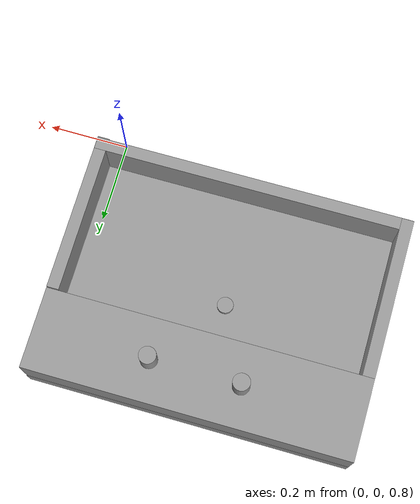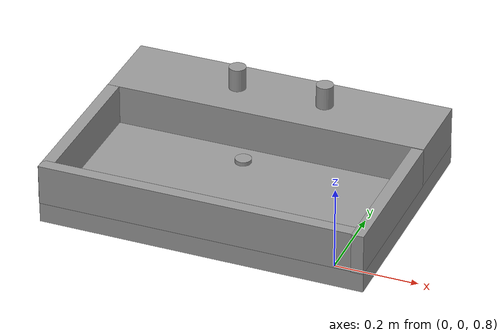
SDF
<?xml version='1.0'?>
<sdf version='1.7'>
  <model name='my_sink'>
    <link name='link_1'>
      <inertial>
        <mass>1</mass>
        <inertia>
          <ixx>0.166667</ixx>
          <ixy>0</ixy>
          <ixz>0</ixz>
          <iyy>0.166667</iyy>
          <iyz>0</iyz>
          <izz>0.166667</izz>
        </inertia>
        <pose>0 0 0 0 -0 0</pose>
      </inertial>
      <pose>-0.339251 0.324347 0.253041 -3e-06 -4e-06 -0</pose>
      <gravity>1</gravity>
      <self_collide>0</self_collide>
      <kinematic>0</kinematic>
      <enable_wind>0</enable_wind>
      <visual name='visual'>
        <pose>0 0 0.5 0 -0 0</pose>
        <geometry>
          <box>
            <size>0.8 0.6 0.05</size>
          </box>
        </geometry>
        <material>
          <lighting>1</lighting>
          <script>
            <uri>file://media/materials/scripts/gazebo.material</uri>
            <name>Gazebo/Grey</name>
          </script>
          <shader type='pixel'>
            <normal_map>__default__</normal_map>
          </shader>
          <ambient>0.9 0.9 0.9 1</ambient>
          <diffuse>0.9 0.9 0.9 1</diffuse>
          <specular>0.01 0.01 0.01 1</specular>
          <emissive>0 0 0 1</emissive>
        </material>
        <transparency>0</transparency>
        <cast_shadows>1</cast_shadows>
      </visual>
      <collision name='collision'>
        <laser_retro>0</laser_retro>
        <max_contacts>10</max_contacts>
        <pose>0 0 0.5 0 -0 0</pose>
        <geometry>
          <box>
            <size>0.8 0.6 0.05</size>
          </box>
        </geometry>
        <surface>
          <friction>
            <ode>
              <mu>1</mu>
              <mu2>1</mu2>
              <fdir1>0 0 0</fdir1>
              <slip1>0</slip1>
              <slip2>0</slip2>
            </ode>
            <torsional>
              <coefficient>1</coefficient>
              <patch_radius>0</patch_radius>
              <surface_radius>0</surface_radius>
              <use_patch_radius>1</use_patch_radius>
              <ode>
                <slip>0</slip>
              </ode>
            </torsional>
          </friction>
          <bounce>
            <restitution_coefficient>0</restitution_coefficient>
            <threshold>1e+06</threshold>
          </bounce>
          <contact>
            <collide_without_contact>0</collide_without_contact>
            <collide_without_contact_bitmask>1</collide_without_contact_bitmask>
            <collide_bitmask>1</collide_bitmask>
            <ode>
              <soft_cfm>0</soft_cfm>
              <soft_erp>0.2</soft_erp>
              <kp>1e+13</kp>
              <kd>1</kd>
              <max_vel>0.01</max_vel>
              <min_depth>0</min_depth>
            </ode>
            <bullet>
              <split_impulse>1</split_impulse>
              <split_impulse_penetration_threshold>-0.01</split_impulse_penetration_threshold>
              <soft_cfm>0</soft_cfm>
              <soft_erp>0.2</soft_erp>
              <kp>1e+13</kp>
              <kd>1</kd>
            </bullet>
          </contact>
        </surface>
      </collision>
    </link>
    <link name='link_1_0'>
      <inertial>
        <mass>1</mass>
        <inertia>
          <ixx>0.145833</ixx>
          <ixy>0</ixy>
          <ixz>0</ixz>
          <iyy>0.145833</iyy>
          <iyz>0</iyz>
          <izz>0.125</izz>
        </inertia>
        <pose>0 0 0 0 -0 0</pose>
      </inertial>
      <pose>-0.354606 0.332912 0.806035 0 -0 0</pose>
      <gravity>0</gravity>
      <self_collide>0</self_collide>
      <kinematic>0</kinematic>
      <enable_wind>0</enable_wind>
      <visual name='visual'>
        <pose>0 0 0 0 -0 0</pose>
        <geometry>
          <cylinder>
            <radius>0.02</radius>
            <length>0.01</length>
          </cylinder>
        </geometry>
        <material>
          <lighting>1</lighting>
          <script>
            <uri>file://media/materials/scripts/gazebo.material</uri>
            <name>Gazebo/Grey</name>
          </script>
          <shader type='pixel'>
            <normal_map>__default__</normal_map>
          </shader>
          <ambient>0.3 0.3 0.3 0</ambient>
          <diffuse>0.3 0.3 0.3 1</diffuse>
          <specular>0.01 0.01 0.01 1</specular>
          <emissive>0 0 0 1</emissive>
        </material>
        <transparency>0</transparency>
        <cast_shadows>1</cast_shadows>
      </visual>
      <collision name='collision'>
        <laser_retro>0</laser_retro>
        <max_contacts>10</max_contacts>
        <pose>0 0 0 0 -0 0</pose>
        <geometry>
          <cylinder>
            <radius>0.02</radius>
            <length>0.01</length>
          </cylinder>
        </geometry>
        <surface>
          <friction>
            <ode>
              <mu>1</mu>
              <mu2>1</mu2>
              <fdir1>0 0 0</fdir1>
              <slip1>0</slip1>
              <slip2>0</slip2>
            </ode>
            <torsional>
              <coefficient>1</coefficient>
              <patch_radius>0</patch_radius>
              <surface_radius>0</surface_radius>
              <use_patch_radius>1</use_patch_radius>
              <ode>
                <slip>0</slip>
              </ode>
            </torsional>
          </friction>
          <bounce>
            <restitution_coefficient>0</restitution_coefficient>
            <threshold>1e+06</threshold>
          </bounce>
          <contact>
            <collide_without_contact>0</collide_without_contact>
            <collide_without_contact_bitmask>1</collide_without_contact_bitmask>
            <collide_bitmask>1</collide_bitmask>
            <ode>
              <soft_cfm>0</soft_cfm>
              <soft_erp>0.2</soft_erp>
              <kp>1e+13</kp>
              <kd>1</kd>
              <max_vel>0.01</max_vel>
              <min_depth>0</min_depth>
            </ode>
            <bullet>
              <split_impulse>1</split_impulse>
              <split_impulse_penetration_threshold>-0.01</split_impulse_penetration_threshold>
              <soft_cfm>0</soft_cfm>
              <soft_erp>0.2</soft_erp>
              <kp>1e+13</kp>
              <kd>1</kd>
            </bullet>
          </contact>
        </surface>
      </collision>
    </link>
    <link name='link_1_0_clone'>
      <inertial>
        <mass>1</mass>
        <inertia>
          <ixx>0.145833</ixx>
          <ixy>0</ixy>
          <ixz>0</ixz>
          <iyy>0.145833</iyy>
          <iyz>0</iyz>
          <izz>0.125</izz>
        </inertia>
        <pose>0 0 0 0 -0 0</pose>
      </inertial>
      <pose>-0.447025 0.525674 0.904806 0 -0 0</pose>
      <gravity>1</gravity>
      <self_collide>0</self_collide>
      <kinematic>0</kinematic>
      <enable_wind>0</enable_wind>
      <visual name='visual'>
        <pose>0 0 0 0 -0 0</pose>
        <geometry>
          <cylinder>
            <radius>0.021</radius>
            <length>0.06</length>
          </cylinder>
        </geometry>
        <material>
          <lighting>1</lighting>
          <script>
            <uri>file://media/materials/scripts/gazebo.material</uri>
            <name>Gazebo/Grey</name>
          </script>
          <shader type='pixel'>
            <normal_map>__default__</normal_map>
          </shader>
          <ambient>0.3 0.3 0.3 0</ambient>
          <diffuse>0.3 0.3 0.3 1</diffuse>
          <specular>0.01 0.01 0.01 1</specular>
          <emissive>0 0 0 1</emissive>
        </material>
        <transparency>0</transparency>
        <cast_shadows>1</cast_shadows>
      </visual>
      <collision name='collision'>
        <laser_retro>0</laser_retro>
        <max_contacts>10</max_contacts>
        <pose>0 0 0 0 -0 0</pose>
        <geometry>
          <cylinder>
            <radius>0.021</radius>
            <length>0.06</length>
          </cylinder>
        </geometry>
        <surface>
          <friction>
            <ode>
              <mu>1</mu>
              <mu2>1</mu2>
              <fdir1>0 0 0</fdir1>
              <slip1>0</slip1>
              <slip2>0</slip2>
            </ode>
            <torsional>
              <coefficient>1</coefficient>
              <patch_radius>0</patch_radius>
              <surface_radius>0</surface_radius>
              <use_patch_radius>1</use_patch_radius>
              <ode>
                <slip>0</slip>
              </ode>
            </torsional>
          </friction>
          <bounce>
            <restitution_coefficient>0</restitution_coefficient>
            <threshold>1e+06</threshold>
          </bounce>
          <contact>
            <collide_without_contact>0</collide_without_contact>
            <collide_without_contact_bitmask>1</collide_without_contact_bitmask>
            <collide_bitmask>1</collide_bitmask>
            <ode>
              <soft_cfm>0</soft_cfm>
              <soft_erp>0.2</soft_erp>
              <kp>1e+13</kp>
              <kd>1</kd>
              <max_vel>0.01</max_vel>
              <min_depth>0</min_depth>
            </ode>
            <bullet>
              <split_impulse>1</split_impulse>
              <split_impulse_penetration_threshold>-0.01</split_impulse_penetration_threshold>
              <soft_cfm>0</soft_cfm>
              <soft_erp>0.2</soft_erp>
              <kp>1e+13</kp>
              <kd>1</kd>
            </bullet>
          </contact>
        </surface>
      </collision>
    </link>
    <link name='link_1_0_clone_clone'>
      <inertial>
        <mass>1</mass>
        <inertia>
          <ixx>0.145833</ixx>
          <ixy>0</ixy>
          <ixz>0</ixz>
          <iyy>0.145833</iyy>
          <iyz>0</iyz>
          <izz>0.125</izz>
        </inertia>
        <pose>0 0 0 0 -0 0</pose>
      </inertial>
      <pose>-0.224674 0.524945 0.904806 0 -0 0</pose>
      <gravity>1</gravity>
      <self_collide>0</self_collide>
      <kinematic>0</kinematic>
      <enable_wind>0</enable_wind>
      <visual name='visual'>
        <pose>0 0 0 0 -0 0</pose>
        <geometry>
          <cylinder>
            <radius>0.021</radius>
            <length>0.06</length>
          </cylinder>
        </geometry>
        <material>
          <lighting>1</lighting>
          <script>
            <uri>file://media/materials/scripts/gazebo.material</uri>
            <name>Gazebo/Grey</name>
          </script>
          <shader type='pixel'>
            <normal_map>__default__</normal_map>
          </shader>
          <ambient>0.3 0.3 0.3 0</ambient>
          <diffuse>0.3 0.3 0.3 1</diffuse>
          <specular>0.01 0.01 0.01 1</specular>
          <emissive>0 0 0 1</emissive>
        </material>
        <transparency>0</transparency>
        <cast_shadows>1</cast_shadows>
      </visual>
      <collision name='collision'>
        <laser_retro>0</laser_retro>
        <max_contacts>10</max_contacts>
        <pose>0 0 0 0 -0 0</pose>
        <geometry>
          <cylinder>
            <radius>0.021</radius>
            <length>0.06</length>
          </cylinder>
        </geometry>
        <surface>
          <friction>
            <ode>
              <mu>1</mu>
              <mu2>1</mu2>
              <fdir1>0 0 0</fdir1>
              <slip1>0</slip1>
              <slip2>0</slip2>
            </ode>
            <torsional>
              <coefficient>1</coefficient>
              <patch_radius>0</patch_radius>
              <surface_radius>0</surface_radius>
              <use_patch_radius>1</use_patch_radius>
              <ode>
                <slip>0</slip>
              </ode>
            </torsional>
          </friction>
          <bounce>
            <restitution_coefficient>0</restitution_coefficient>
            <threshold>1e+06</threshold>
          </bounce>
          <contact>
            <collide_without_contact>0</collide_without_contact>
            <collide_without_contact_bitmask>1</collide_without_contact_bitmask>
            <collide_bitmask>1</collide_bitmask>
            <ode>
              <soft_cfm>0</soft_cfm>
              <soft_erp>0.2</soft_erp>
              <kp>1e+13</kp>
              <kd>1</kd>
              <max_vel>0.01</max_vel>
              <min_depth>0</min_depth>
            </ode>
            <bullet>
              <split_impulse>1</split_impulse>
              <split_impulse_penetration_threshold>-0.01</split_impulse_penetration_threshold>
              <soft_cfm>0</soft_cfm>
              <soft_erp>0.2</soft_erp>
              <kp>1e+13</kp>
              <kd>1</kd>
            </bullet>
          </contact>
        </surface>
      </collision>
    </link>
    <link name='link_1_clone'>
      <inertial>
        <mass>1</mass>
        <inertia>
          <ixx>0.166667</ixx>
          <ixy>0</ixy>
          <ixz>0</ixz>
          <iyy>0.166667</iyy>
          <iyz>0</iyz>
          <izz>0.166667</izz>
        </inertia>
        <pose>0 0 0 0 -0 0</pose>
      </inertial>
      <pose>-0.339505 0.038648 0.327445 -6e-06 -8e-06 0</pose>
      <gravity>1</gravity>
      <self_collide>0</self_collide>
      <kinematic>0</kinematic>
      <enable_wind>0</enable_wind>
      <visual name='visual'>
        <pose>0 0 0.5 0 -0 0</pose>
        <geometry>
          <box>
            <size>0.8 0.03 0.1</size>
          </box>
        </geometry>
        <material>
          <lighting>1</lighting>
          <script>
            <uri>file://media/materials/scripts/gazebo.material</uri>
            <name>Gazebo/Grey</name>
          </script>
          <shader type='pixel'>
            <normal_map>__default__</normal_map>
          </shader>
          <ambient>0.9 0.9 0.9 1</ambient>
          <diffuse>0.9 0.9 0.9 1</diffuse>
          <specular>0.01 0.01 0.01 1</specular>
          <emissive>0 0 0 1</emissive>
        </material>
        <transparency>0</transparency>
        <cast_shadows>1</cast_shadows>
      </visual>
      <collision name='collision'>
        <laser_retro>0</laser_retro>
        <max_contacts>10</max_contacts>
        <pose>0 0 0.5 0 -0 0</pose>
        <geometry>
          <box>
            <size>0.8 0.03 0.1</size>
          </box>
        </geometry>
        <surface>
          <friction>
            <ode>
              <mu>1</mu>
              <mu2>1</mu2>
              <fdir1>0 0 0</fdir1>
              <slip1>0</slip1>
              <slip2>0</slip2>
            </ode>
            <torsional>
              <coefficient>1</coefficient>
              <patch_radius>0</patch_radius>
              <surface_radius>0</surface_radius>
              <use_patch_radius>1</use_patch_radius>
              <ode>
                <slip>0</slip>
              </ode>
            </torsional>
          </friction>
          <bounce>
            <restitution_coefficient>0</restitution_coefficient>
            <threshold>1e+06</threshold>
          </bounce>
          <contact>
            <collide_without_contact>0</collide_without_contact>
            <collide_without_contact_bitmask>1</collide_without_contact_bitmask>
            <collide_bitmask>1</collide_bitmask>
            <ode>
              <soft_cfm>0</soft_cfm>
              <soft_erp>0.2</soft_erp>
              <kp>1e+13</kp>
              <kd>1</kd>
              <max_vel>0.01</max_vel>
              <min_depth>0</min_depth>
            </ode>
            <bullet>
              <split_impulse>1</split_impulse>
              <split_impulse_penetration_threshold>-0.01</split_impulse_penetration_threshold>
              <soft_cfm>0</soft_cfm>
              <soft_erp>0.2</soft_erp>
              <kp>1e+13</kp>
              <kd>1</kd>
            </bullet>
          </contact>
        </surface>
      </collision>
    </link>
    <link name='link_1_clone_clone'>
      <inertial>
        <mass>1</mass>
        <inertia>
          <ixx>0.166667</ixx>
          <ixy>0</ixy>
          <ixz>0</ixz>
          <iyy>0.166667</iyy>
          <iyz>0</iyz>
          <izz>0.166667</izz>
        </inertia>
        <pose>0 0 0 0 -0 0</pose>
      </inertial>
      <pose>-0.3399 0.523683 0.327445 -6e-06 -8e-06 0</pose>
      <gravity>1</gravity>
      <self_collide>0</self_collide>
      <kinematic>0</kinematic>
      <enable_wind>0</enable_wind>
      <visual name='visual'>
        <pose>0 0 0.5 0 -0 0</pose>
        <geometry>
          <box>
            <size>0.8 0.2 0.1</size>
          </box>
        </geometry>
        <material>
          <lighting>1</lighting>
          <script>
            <uri>file://media/materials/scripts/gazebo.material</uri>
            <name>Gazebo/Grey</name>
          </script>
          <shader type='pixel'>
            <normal_map>__default__</normal_map>
          </shader>
          <ambient>0.9 0.9 0.9 1</ambient>
          <diffuse>0.9 0.9 0.9 1</diffuse>
          <specular>0.01 0.01 0.01 1</specular>
          <emissive>0 0 0 1</emissive>
        </material>
        <transparency>0</transparency>
        <cast_shadows>1</cast_shadows>
      </visual>
      <collision name='collision'>
        <laser_retro>0</laser_retro>
        <max_contacts>10</max_contacts>
        <pose>0 0 0.5 0 -0 0</pose>
        <geometry>
          <box>
            <size>0.8 0.03 0.1</size>
          </box>
        </geometry>
        <surface>
          <friction>
            <ode>
              <mu>1</mu>
              <mu2>1</mu2>
              <fdir1>0 0 0</fdir1>
              <slip1>0</slip1>
              <slip2>0</slip2>
            </ode>
            <torsional>
              <coefficient>1</coefficient>
              <patch_radius>0</patch_radius>
              <surface_radius>0</surface_radius>
              <use_patch_radius>1</use_patch_radius>
              <ode>
                <slip>0</slip>
              </ode>
            </torsional>
          </friction>
          <bounce>
            <restitution_coefficient>0</restitution_coefficient>
            <threshold>1e+06</threshold>
          </bounce>
          <contact>
            <collide_without_contact>0</collide_without_contact>
            <collide_without_contact_bitmask>1</collide_without_contact_bitmask>
            <collide_bitmask>1</collide_bitmask>
            <ode>
              <soft_cfm>0</soft_cfm>
              <soft_erp>0.2</soft_erp>
              <kp>1e+13</kp>
              <kd>1</kd>
              <max_vel>0.01</max_vel>
              <min_depth>0</min_depth>
            </ode>
            <bullet>
              <split_impulse>1</split_impulse>
              <split_impulse_penetration_threshold>-0.01</split_impulse_penetration_threshold>
              <soft_cfm>0</soft_cfm>
              <soft_erp>0.2</soft_erp>
              <kp>1e+13</kp>
              <kd>1</kd>
            </bullet>
          </contact>
        </surface>
      </collision>
    </link>
    <link name='link_1_clone_clone_0'>
      <inertial>
        <mass>1</mass>
        <inertia>
          <ixx>0.166667</ixx>
          <ixy>0</ixy>
          <ixz>0</ixz>
          <iyy>0.166667</iyy>
          <iyz>0</iyz>
          <izz>0.166667</izz>
        </inertia>
        <pose>0 0 0 0 -0 0</pose>
      </inertial>
      <pose>-0.725159 0.224068 0.327441 -6e-06 -8e-06 0</pose>
      <gravity>1</gravity>
      <self_collide>0</self_collide>
      <kinematic>0</kinematic>
      <enable_wind>0</enable_wind>
      <visual name='visual'>
        <pose>0 0 0.5 0 -0 1.5707</pose>
        <geometry>
          <box>
            <size>0.4 0.03 0.1</size>
          </box>
        </geometry>
        <material>
          <lighting>1</lighting>
          <script>
            <uri>file://media/materials/scripts/gazebo.material</uri>
            <name>Gazebo/Grey</name>
          </script>
          <shader type='pixel'>
            <normal_map>__default__</normal_map>
          </shader>
          <ambient>0.9 0.9 0.9 1</ambient>
          <diffuse>0.9 0.9 0.9 1</diffuse>
          <specular>0.01 0.01 0.01 1</specular>
          <emissive>0 0 0 1</emissive>
        </material>
        <transparency>0</transparency>
        <cast_shadows>1</cast_shadows>
      </visual>
      <collision name='collision'>
        <laser_retro>0</laser_retro>
        <max_contacts>10</max_contacts>
        <pose>0 0 0.5 0 -0 1.5707</pose>
        <geometry>
          <box>
            <size>0.4 0.03 0.1</size>
          </box>
        </geometry>
        <surface>
          <friction>
            <ode>
              <mu>1</mu>
              <mu2>1</mu2>
              <fdir1>0 0 0</fdir1>
              <slip1>0</slip1>
              <slip2>0</slip2>
            </ode>
            <torsional>
              <coefficient>1</coefficient>
              <patch_radius>0</patch_radius>
              <surface_radius>0</surface_radius>
              <use_patch_radius>1</use_patch_radius>
              <ode>
                <slip>0</slip>
              </ode>
            </torsional>
          </friction>
          <bounce>
            <restitution_coefficient>0</restitution_coefficient>
            <threshold>1e+06</threshold>
          </bounce>
          <contact>
            <collide_without_contact>0</collide_without_contact>
            <collide_without_contact_bitmask>1</collide_without_contact_bitmask>
            <collide_bitmask>1</collide_bitmask>
            <ode>
              <soft_cfm>0</soft_cfm>
              <soft_erp>0.2</soft_erp>
              <kp>1e+13</kp>
              <kd>1</kd>
              <max_vel>0.01</max_vel>
              <min_depth>0</min_depth>
            </ode>
            <bullet>
              <split_impulse>1</split_impulse>
              <split_impulse_penetration_threshold>-0.01</split_impulse_penetration_threshold>
              <soft_cfm>0</soft_cfm>
              <soft_erp>0.2</soft_erp>
              <kp>1e+13</kp>
              <kd>1</kd>
            </bullet>
          </contact>
        </surface>
      </collision>
    </link>
    <link name='link_1_clone_clone_0_clone'>
      <inertial>
        <mass>1</mass>
        <inertia>
          <ixx>0.166667</ixx>
          <ixy>0</ixy>
          <ixz>0</ixz>
          <iyy>0.166667</iyy>
          <iyz>0</iyz>
          <izz>0.166667</izz>
        </inertia>
        <pose>0 0 0 0 -0 0</pose>
      </inertial>
      <pose>0.045938 0.221634 0.327447 -6e-06 -8e-06 0</pose>
      <gravity>1</gravity>
      <self_collide>0</self_collide>
      <kinematic>0</kinematic>
      <enable_wind>0</enable_wind>
      <visual name='visual'>
        <pose>0 0 0.5 0 -0 1.5707</pose>
        <geometry>
          <box>
            <size>0.4 0.03 0.1</size>
          </box>
        </geometry>
        <material>
          <lighting>1</lighting>
          <script>
            <uri>file://media/materials/scripts/gazebo.material</uri>
            <name>Gazebo/Grey</name>
          </script>
          <shader type='pixel'>
            <normal_map>__default__</normal_map>
          </shader>
          <ambient>0.9 0.9 0.9 1</ambient>
          <diffuse>0.9 0.9 0.9 1</diffuse>
          <specular>0.01 0.01 0.01 1</specular>
          <emissive>0 0 0 1</emissive>
        </material>
        <transparency>0</transparency>
        <cast_shadows>1</cast_shadows>
      </visual>
      <collision name='collision'>
        <laser_retro>0</laser_retro>
        <max_contacts>10</max_contacts>
        <pose>0 0 0.5 0 -0 1.5707</pose>
        <geometry>
          <box>
            <size>0.4 0.03 0.1</size>
          </box>
        </geometry>
        <surface>
          <friction>
            <ode>
              <mu>1</mu>
              <mu2>1</mu2>
              <fdir1>0 0 0</fdir1>
              <slip1>0</slip1>
              <slip2>0</slip2>
            </ode>
            <torsional>
              <coefficient>1</coefficient>
              <patch_radius>0</patch_radius>
              <surface_radius>0</surface_radius>
              <use_patch_radius>1</use_patch_radius>
              <ode>
                <slip>0</slip>
              </ode>
            </torsional>
          </friction>
          <bounce>
            <restitution_coefficient>0</restitution_coefficient>
            <threshold>1e+06</threshold>
          </bounce>
          <contact>
            <collide_without_contact>0</collide_without_contact>
            <collide_without_contact_bitmask>1</collide_without_contact_bitmask>
            <collide_bitmask>1</collide_bitmask>
            <ode>
              <soft_cfm>0</soft_cfm>
              <soft_erp>0.2</soft_erp>
              <kp>1e+13</kp>
              <kd>1</kd>
              <max_vel>0.01</max_vel>
              <min_depth>0</min_depth>
            </ode>
            <bullet>
              <split_impulse>1</split_impulse>
              <split_impulse_penetration_threshold>-0.01</split_impulse_penetration_threshold>
              <soft_cfm>0</soft_cfm>
              <soft_erp>0.2</soft_erp>
              <kp>1e+13</kp>
              <kd>1</kd>
            </bullet>
          </contact>
        </surface>
      </collision>
    </link>
    <static>1</static>
    <allow_auto_disable>1</allow_auto_disable>
  </model>
</sdf>
